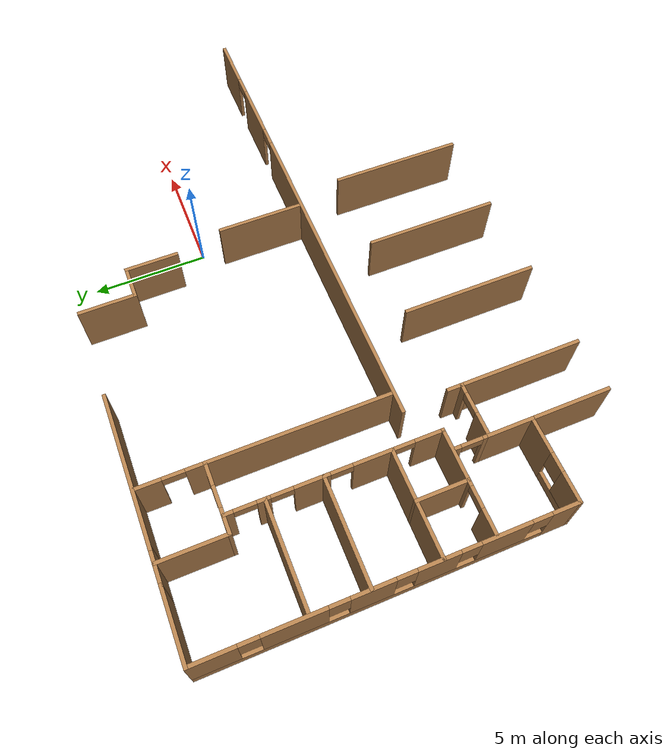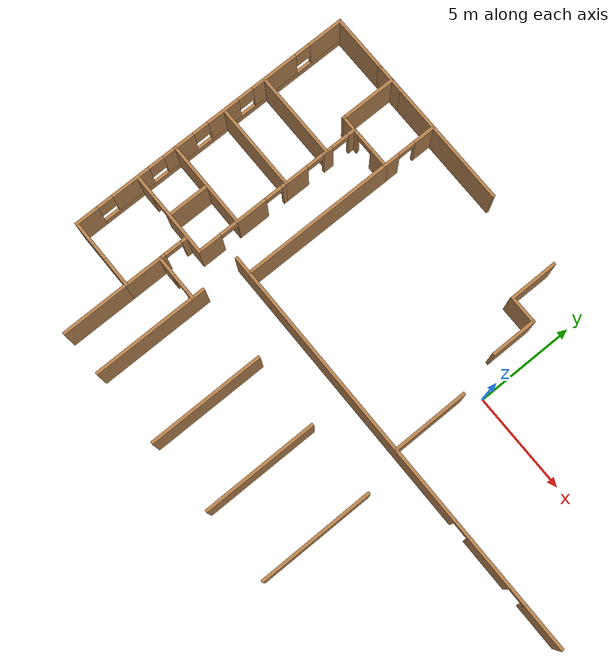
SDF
<sdf version="1.5">
 <model name="Office">
  <link name="Wall_10">
   <collision name="Wall_10_Collision">
    <geometry><box><size>3 0.15 2.5</size></box></geometry>
    <pose>0 0 1.25 0 -0 0</pose>
   </collision>
   <visual name="Wall_10_Visual">
    <pose>0 0 1.25 0 -0 0</pose>
    <geometry><box><size>3 0.15 2.5</size></box></geometry>
    <material>
     <script><uri>file://media/materials/scripts/gazebo.material</uri><name>Gazebo/Wood</name></script>
     <ambient>1 1 1 1</ambient>
    </material>
   </visual>
   <pose>-15.5998 5.80875 0 0 -0 0</pose>
  </link>
  <link name="Wall_14">
   <collision name="Wall_14_Collision">
    <geometry><box><size>1.5 0.15 2.5</size></box></geometry>
    <pose>0 0 1.25 0 -0 0</pose>
   </collision>
   <visual name="Wall_14_Visual">
    <pose>0 0 1.25 0 -0 0</pose>
    <geometry><box><size>1.5 0.15 2.5</size></box></geometry>
    <material>
     <script><uri>file://media/materials/scripts/gazebo.material</uri><name>Gazebo/Wood</name></script>
     <ambient>1 1 1 1</ambient>
    </material>
   </visual>
   <pose>-13.4998 5.80875 0 0 -0 0</pose>
  </link>
  <link name="Wall_15">
   <collision name="Wall_15_Collision">
    <geometry><box><size>6.5 0.15 2.5</size></box></geometry>
    <pose>0 0 1.25 0 -0 0</pose>
   </collision>
   <visual name="Wall_15_Visual">
    <pose>0 0 1.25 0 -0 0</pose>
    <geometry><box><size>6.5 0.15 2.5</size></box></geometry>
    <material>
     <script><uri>file://media/materials/scripts/gazebo.material</uri><name>Gazebo/Wood</name></script>
     <ambient>1 1 1 1</ambient>
    </material>
   </visual>
   <pose>-9.64979 5.80875 0 0 -0 0</pose>
  </link>
  <link name="Wall_28">
   <collision name="Wall_28_Collision">
    <geometry><box><size>2 0.15 2.5</size></box></geometry>
    <pose>0 0 1.25 0 -0 0</pose>
   </collision>
   <visual name="Wall_28_Visual">
    <pose>0 0 1.25 0 -0 0</pose>
    <geometry><box><size>2 0.15 2.5</size></box></geometry>
    <material>
     <script><uri>file://media/materials/scripts/gazebo.material</uri><name>Gazebo/Wood</name></script>
     <ambient>1 1 1 1</ambient>
    </material>
   </visual>
   <pose>-13.4952 -8.13375 0 0 -0 1.5708</pose>
  </link>
  <link name="Wall_29">
   <pose>-12.3617 -7.20875 0 0 -0 0</pose>
   <visual name="Wall_29_Visual_0">
    <pose>-0.669337 0 1.25 0 -0 0</pose>
    <geometry><box><size>1.07833 0.15 2.5</size></box></geometry>
    <material>
     <script><uri>file://media/materials/scripts/gazebo.material</uri><name>Gazebo/Wood</name></script>
     <ambient>1 1 1 1</ambient>
    </material>
   </visual>
   <collision name="Wall_29_Collision_0">
    <geometry><box><size>1.07833 0.15 2.5</size></box></geometry>
    <pose>-0.669337 0 1.25 0 -0 0</pose>
   </collision>
   <visual name="Wall_29_Visual_1">
    <pose>0.989163 0 1.25 0 -0 0</pose>
    <geometry><box><size>0.438674 0.15 2.5</size></box></geometry>
    <material>
     <script><uri>file://media/materials/scripts/gazebo.material</uri><name>Gazebo/Wood</name></script>
     <ambient>1 1 1 1</ambient>
    </material>
   </visual>
   <collision name="Wall_29_Collision_1">
    <geometry><box><size>0.438674 0.15 2.5</size></box></geometry>
    <pose>0.989163 0 1.25 0 -0 0</pose>
   </collision>
   <visual name="Wall_29_Visual_2">
    <pose>0.319826 0 2.25 0 -0 0</pose>
    <geometry><box><size>0.9 0.15 0.5</size></box></geometry>
    <material>
     <script><uri>file://media/materials/scripts/gazebo.material</uri><name>Gazebo/Wood</name></script>
     <ambient>1 1 1 1</ambient>
    </material>
   </visual>
   <collision name="Wall_29_Collision_2">
    <geometry><box><size>0.9 0.15 0.5</size></box></geometry>
    <pose>0.319826 0 2.25 0 -0 0</pose>
   </collision>
  </link>
  <link name="Wall_33">
   <collision name="Wall_33_Collision">
    <geometry><box><size>5.881 0.15 2.5</size></box></geometry>
    <pose>0 0 1.25 0 -0 0</pose>
   </collision>
   <visual name="Wall_33_Visual">
    <pose>0 0 1.25 0 -0 0</pose>
    <geometry><box><size>5.881 0.15 2.5</size></box></geometry>
    <material>
     <script><uri>file://media/materials/scripts/gazebo.material</uri><name>Gazebo/Wood</name></script>
     <ambient>1 1 1 1</ambient>
    </material>
   </visual>
   <pose>-11.2222 -9.50625 0 0 0 -1.5708</pose>
  </link>
  <link name="Wall_36">
   <collision name="Wall_36_Collision">
    <geometry><box><size>5.866 0.15 2.5</size></box></geometry>
    <pose>0 0 1.25 0 -0 0</pose>
   </collision>
   <visual name="Wall_36_Visual">
    <pose>0 0 1.25 0 -0 0</pose>
    <geometry><box><size>5.866 0.15 2.5</size></box></geometry>
    <material>
     <script><uri>file://media/materials/scripts/gazebo.material</uri><name>Gazebo/Wood</name></script>
     <ambient>1 1 1 1</ambient>
    </material>
   </visual>
   <pose>-7.38821 -9.51375 0 0 0 -1.5708</pose>
  </link>
  <link name="Wall_38">
   <collision name="Wall_38_Collision">
    <geometry><box><size>5.8 0.15 2.5</size></box></geometry>
    <pose>0 0 1.25 0 -0 0</pose>
   </collision>
   <visual name="Wall_38_Visual">
    <pose>0 0 1.25 0 -0 0</pose>
    <geometry><box><size>5.8 0.15 2.5</size></box></geometry>
    <material>
     <script><uri>file://media/materials/scripts/gazebo.material</uri><name>Gazebo/Wood</name></script>
     <ambient>1 1 1 1</ambient>
    </material>
   </visual>
   <pose>-3.68921 -9.54675 0 0 0 -1.5708</pose>
  </link>
  <link name="Wall_40">
   <collision name="Wall_40_Collision">
    <geometry><box><size>5.8 0.15 2.5</size></box></geometry>
    <pose>0 0 1.25 0 -0 0</pose>
   </collision>
   <visual name="Wall_40_Visual">
    <pose>0 0 1.25 0 -0 0</pose>
    <geometry><box><size>5.8 0.15 2.5</size></box></geometry>
    <material>
     <script><uri>file://media/materials/scripts/gazebo.material</uri><name>Gazebo/Wood</name></script>
     <ambient>1 1 1 1</ambient>
    </material>
   </visual>
   <pose>0.046792 -9.54675 0 0 0 -1.5708</pose>
  </link>
  <link name="Wall_51">
   <pose>-14.8308 -5.69671 0 0 -0 0</pose>
   <visual name="Wall_51_Visual_0">
    <pose>-1.66535 0 1.25 0 -0 0</pose>
    <geometry><box><size>1.16929 0.15 2.5</size></box></geometry>
    <material>
     <script><uri>file://media/materials/scripts/gazebo.material</uri><name>Gazebo/Wood</name></script>
     <ambient>1 1 1 1</ambient>
    </material>
   </visual>
   <collision name="Wall_51_Collision_0">
    <geometry><box><size>1.16929 0.15 2.5</size></box></geometry>
    <pose>-1.66535 0 1.25 0 -0 0</pose>
   </collision>
   <visual name="Wall_51_Visual_1">
    <pose>1.03465 0 1.25 0 -0 0</pose>
    <geometry><box><size>2.43071 0.15 2.5</size></box></geometry>
    <material>
     <script><uri>file://media/materials/scripts/gazebo.material</uri><name>Gazebo/Wood</name></script>
     <ambient>1 1 1 1</ambient>
    </material>
   </visual>
   <collision name="Wall_51_Collision_1">
    <geometry><box><size>2.43071 0.15 2.5</size></box></geometry>
    <pose>1.03465 0 1.25 0 -0 0</pose>
   </collision>
   <visual name="Wall_51_Visual_2">
    <pose>-0.63071 0 2.25 0 -0 0</pose>
    <geometry><box><size>0.9 0.15 0.5</size></box></geometry>
    <material>
     <script><uri>file://media/materials/scripts/gazebo.material</uri><name>Gazebo/Wood</name></script>
     <ambient>1 1 1 1</ambient>
    </material>
   </visual>
   <collision name="Wall_51_Collision_2">
    <geometry><box><size>0.9 0.15 0.5</size></box></geometry>
    <pose>-0.63071 0 2.25 0 -0 0</pose>
   </collision>
  </link>
  <link name="Wall_52">
   <pose>-12.6558 -3.27171 0 0 -0 1.5708</pose>
   <visual name="Wall_52_Visual_0">
    <pose>-1.8744 0 1.25 0 -0 0</pose>
    <geometry><box><size>1.25119 0.15 2.5</size></box></geometry>
    <material>
     <script><uri>file://media/materials/scripts/gazebo.material</uri><name>Gazebo/Wood</name></script>
     <ambient>1 1 1 1</ambient>
    </material>
   </visual>
   <collision name="Wall_52_Collision_0">
    <geometry><box><size>1.25119 0.15 2.5</size></box></geometry>
    <pose>-1.8744 0 1.25 0 -0 0</pose>
   </collision>
   <visual name="Wall_52_Visual_1">
    <pose>0.459327 0 1.25 0 -0 0</pose>
    <geometry><box><size>1.61627 0.15 2.5</size></box></geometry>
    <material>
     <script><uri>file://media/materials/scripts/gazebo.material</uri><name>Gazebo/Wood</name></script>
     <ambient>1 1 1 1</ambient>
    </material>
   </visual>
   <collision name="Wall_52_Collision_1">
    <geometry><box><size>1.61627 0.15 2.5</size></box></geometry>
    <pose>0.459327 0 1.25 0 -0 0</pose>
   </collision>
   <visual name="Wall_52_Visual_2">
    <pose>2.33373 0 1.25 0 -0 0</pose>
    <geometry><box><size>0.332538 0.15 2.5</size></box></geometry>
    <material>
     <script><uri>file://media/materials/scripts/gazebo.material</uri><name>Gazebo/Wood</name></script>
     <ambient>1 1 1 1</ambient>
    </material>
   </visual>
   <collision name="Wall_52_Collision_2">
    <geometry><box><size>0.332538 0.15 2.5</size></box></geometry>
    <pose>2.33373 0 1.25 0 -0 0</pose>
   </collision>
   <visual name="Wall_52_Visual_3">
    <pose>-0.798807 0 2.25 0 -0 0</pose>
    <geometry><box><size>0.9 0.15 0.5</size></box></geometry>
    <material>
     <script><uri>file://media/materials/scripts/gazebo.material</uri><name>Gazebo/Wood</name></script>
     <ambient>1 1 1 1</ambient>
    </material>
   </visual>
   <collision name="Wall_52_Collision_3">
    <geometry><box><size>0.9 0.15 0.5</size></box></geometry>
    <pose>-0.798807 0 2.25 0 -0 0</pose>
   </collision>
   <visual name="Wall_52_Visual_4">
    <pose>1.71746 0 2.25 0 -0 0</pose>
    <geometry><box><size>0.9 0.15 0.5</size></box></geometry>
    <material>
     <script><uri>file://media/materials/scripts/gazebo.material</uri><name>Gazebo/Wood</name></script>
     <ambient>1 1 1 1</ambient>
    </material>
   </visual>
   <collision name="Wall_52_Collision_4">
    <geometry><box><size>0.9 0.15 0.5</size></box></geometry>
    <pose>1.71746 0 2.25 0 -0 0</pose>
   </collision>
  </link>
  <link name="Wall_53">
   <collision name="Wall_53_Collision">
    <geometry><box><size>4.5 0.15 2.5</size></box></geometry>
    <pose>0 0 1.25 0 -0 0</pose>
   </collision>
   <visual name="Wall_53_Visual">
    <pose>0 0 1.25 0 -0 0</pose>
    <geometry><box><size>4.5 0.15 2.5</size></box></geometry>
    <material>
     <script><uri>file://media/materials/scripts/gazebo.material</uri><name>Gazebo/Wood</name></script>
     <ambient>1 1 1 1</ambient>
    </material>
   </visual>
   <pose>-14.8308 -0.846709 0 0 -0 3.14159</pose>
  </link>
  <link name="Wall_57">
   <collision name="Wall_57_Collision">
    <geometry><box><size>4.5 0.15 2.5</size></box></geometry>
    <pose>0 0 1.25 0 -0 0</pose>
   </collision>
   <visual name="Wall_57_Visual">
    <pose>0 0 1.25 0 -0 0</pose>
    <geometry><box><size>4.5 0.15 2.5</size></box></geometry>
    <material>
     <script><uri>file://media/materials/scripts/gazebo.material</uri><name>Gazebo/Wood</name></script>
     <ambient>1 1 1 1</ambient>
    </material>
   </visual>
   <pose>-14.8308 -3.59035 0 0 -0 0</pose>
  </link>
  <link name="Wall_59">
   <collision name="Wall_59_Collision">
    <geometry><box><size>2.25 0.15 2.5</size></box></geometry>
    <pose>0 0 1.25 0 -0 0</pose>
   </collision>
   <visual name="Wall_59_Visual">
    <pose>0 0 1.25 0 -0 0</pose>
    <geometry><box><size>2.25 0.15 2.5</size></box></geometry>
    <material>
     <script><uri>file://media/materials/scripts/gazebo.material</uri><name>Gazebo/Wood</name></script>
     <ambient>1 1 1 1</ambient>
    </material>
   </visual>
   <pose>-14.7695 -4.64035 0 0 0 -1.5708</pose>
  </link>
  <link name="Wall_61">
   <pose>-0.695039 -4.62762 0 0 -0 0</pose>
   <visual name="Wall_61_Visual_0">
    <pose>-3.39393 0 1.25 0 -0 0</pose>
    <geometry><box><size>14.7121 0.15 2.5</size></box></geometry>
    <material>
     <script><uri>file://media/materials/scripts/gazebo.material</uri><name>Gazebo/Wood</name></script>
     <ambient>1 1 1 1</ambient>
    </material>
   </visual>
   <collision name="Wall_61_Collision_0">
    <geometry><box><size>14.7121 0.15 2.5</size></box></geometry>
    <pose>-3.39393 0 1.25 0 -0 0</pose>
   </collision>
   <visual name="Wall_61_Visual_1">
    <pose>6.1834 0 1.25 0 -0 0</pose>
    <geometry><box><size>2.6425 0.15 2.5</size></box></geometry>
    <material>
     <script><uri>file://media/materials/scripts/gazebo.material</uri><name>Gazebo/Wood</name></script>
     <ambient>1 1 1 1</ambient>
    </material>
   </visual>
   <collision name="Wall_61_Collision_1">
    <geometry><box><size>2.6425 0.15 2.5</size></box></geometry>
    <pose>6.1834 0 1.25 0 -0 0</pose>
   </collision>
   <visual name="Wall_61_Visual_2">
    <pose>9.57732 0 1.25 0 -0 0</pose>
    <geometry><box><size>2.34536 0.15 2.5</size></box></geometry>
    <material>
     <script><uri>file://media/materials/scripts/gazebo.material</uri><name>Gazebo/Wood</name></script>
     <ambient>1 1 1 1</ambient>
    </material>
   </visual>
   <collision name="Wall_61_Collision_2">
    <geometry><box><size>2.34536 0.15 2.5</size></box></geometry>
    <pose>9.57732 0 1.25 0 -0 0</pose>
   </collision>
   <visual name="Wall_61_Visual_3">
    <pose>4.41215 0 2.25 0 -0 0</pose>
    <geometry><box><size>0.9 0.15 0.5</size></box></geometry>
    <material>
     <script><uri>file://media/materials/scripts/gazebo.material</uri><name>Gazebo/Wood</name></script>
     <ambient>1 1 1 1</ambient>
    </material>
   </visual>
   <collision name="Wall_61_Collision_3">
    <geometry><box><size>0.9 0.15 0.5</size></box></geometry>
    <pose>4.41215 0 2.25 0 -0 0</pose>
   </collision>
   <visual name="Wall_61_Visual_4">
    <pose>7.95465 0 2.25 0 -0 0</pose>
    <geometry><box><size>0.9 0.15 0.5</size></box></geometry>
    <material>
     <script><uri>file://media/materials/scripts/gazebo.material</uri><name>Gazebo/Wood</name></script>
     <ambient>1 1 1 1</ambient>
    </material>
   </visual>
   <collision name="Wall_61_Collision_4">
    <geometry><box><size>0.9 0.15 0.5</size></box></geometry>
    <pose>7.95465 0 2.25 0 -0 0</pose>
   </collision>
  </link>
  <link name="Wall_65">
   <collision name="Wall_65_Collision">
    <geometry><box><size>3.83063 0.15 2.5</size></box></geometry>
    <pose>0 0 1.25 0 -0 0</pose>
   </collision>
   <visual name="Wall_65_Visual">
    <pose>0 0 1.25 0 -0 0</pose>
    <geometry><box><size>3.83063 0.15 2.5</size></box></geometry>
    <material>
     <script><uri>file://media/materials/scripts/gazebo.material</uri><name>Gazebo/Wood</name></script>
     <ambient>1 1 1 1</ambient>
    </material>
   </visual>
   <pose>-0.622208 -2.73225 0 0 0 -1.5708</pose>
  </link>
  <link name="Wall_7">
   <collision name="Wall_7_Collision">
    <geometry><box><size>3.5 0.15 2.5</size></box></geometry>
    <pose>0 0 1.25 0 -0 0</pose>
   </collision>
   <visual name="Wall_7_Visual">
    <pose>0 0 1.25 0 -0 0</pose>
    <geometry><box><size>3.5 0.15 2.5</size></box></geometry>
    <material>
     <script><uri>file://media/materials/scripts/gazebo.material</uri><name>Gazebo/Wood</name></script>
     <ambient>1 1 1 1</ambient>
    </material>
   </visual>
   <pose>-13.4952 -10.7338 0 0 -0 1.5708</pose>
  </link>
  <link name="Wall_71">
   <pose>-12.6558 1.07829 0 0 -0 1.5708</pose>
   <visual name="Wall_71_Visual_0">
    <pose>-1.36814 0 1.25 0 -0 0</pose>
    <geometry><box><size>1.26371 0.15 2.5</size></box></geometry>
    <material>
     <script><uri>file://media/materials/scripts/gazebo.material</uri><name>Gazebo/Wood</name></script>
     <ambient>1 1 1 1</ambient>
    </material>
   </visual>
   <collision name="Wall_71_Collision_0">
    <geometry><box><size>1.26371 0.15 2.5</size></box></geometry>
    <pose>-1.36814 0 1.25 0 -0 0</pose>
   </collision>
   <visual name="Wall_71_Visual_1">
    <pose>0.427789 0 1.25 0 -0 0</pose>
    <geometry><box><size>0.528153 0.15 2.5</size></box></geometry>
    <material>
     <script><uri>file://media/materials/scripts/gazebo.material</uri><name>Gazebo/Wood</name></script>
     <ambient>1 1 1 1</ambient>
    </material>
   </visual>
   <collision name="Wall_71_Collision_1">
    <geometry><box><size>0.528153 0.15 2.5</size></box></geometry>
    <pose>0.427789 0 1.25 0 -0 0</pose>
   </collision>
   <visual name="Wall_71_Visual_2">
    <pose>1.79593 0 1.25 0 -0 0</pose>
    <geometry><box><size>0.408135 0.15 2.5</size></box></geometry>
    <material>
     <script><uri>file://media/materials/scripts/gazebo.material</uri><name>Gazebo/Wood</name></script>
     <ambient>1 1 1 1</ambient>
    </material>
   </visual>
   <collision name="Wall_71_Collision_2">
    <geometry><box><size>0.408135 0.15 2.5</size></box></geometry>
    <pose>1.79593 0 1.25 0 -0 0</pose>
   </collision>
   <visual name="Wall_71_Visual_3">
    <pose>-0.286287 0 2.25 0 -0 0</pose>
    <geometry><box><size>0.9 0.15 0.5</size></box></geometry>
    <material>
     <script><uri>file://media/materials/scripts/gazebo.material</uri><name>Gazebo/Wood</name></script>
     <ambient>1 1 1 1</ambient>
    </material>
   </visual>
   <collision name="Wall_71_Collision_3">
    <geometry><box><size>0.9 0.15 0.5</size></box></geometry>
    <pose>-0.286287 0 2.25 0 -0 0</pose>
   </collision>
   <visual name="Wall_71_Visual_4">
    <pose>1.14186 0 2.25 0 -0 0</pose>
    <geometry><box><size>0.9 0.15 0.5</size></box></geometry>
    <material>
     <script><uri>file://media/materials/scripts/gazebo.material</uri><name>Gazebo/Wood</name></script>
     <ambient>1 1 1 1</ambient>
    </material>
   </visual>
   <collision name="Wall_71_Collision_4">
    <geometry><box><size>0.9 0.15 0.5</size></box></geometry>
    <pose>1.14186 0 2.25 0 -0 0</pose>
   </collision>
  </link>
  <link name="Wall_74">
   <collision name="Wall_74_Collision">
    <geometry><box><size>4.394 0.15 2.5</size></box></geometry>
    <pose>0 0 1.25 0 -0 0</pose>
   </collision>
   <visual name="Wall_74_Visual">
    <pose>0 0 1.25 0 -0 0</pose>
    <geometry><box><size>4.394 0.15 2.5</size></box></geometry>
    <material>
     <script><uri>file://media/materials/scripts/gazebo.material</uri><name>Gazebo/Wood</name></script>
     <ambient>1 1 1 1</ambient>
    </material>
   </visual>
   <pose>-14.8162 1.44825 0 0 -0 0</pose>
  </link>
  <link name="Wall_76">
   <pose>-11.9562 3.03925 0 0 -0 0</pose>
   <visual name="Wall_76_Visual_0">
    <pose>-0.950696 0 1.25 0 -0 0</pose>
    <geometry><box><size>1.09861 0.15 2.5</size></box></geometry>
    <material>
     <script><uri>file://media/materials/scripts/gazebo.material</uri><name>Gazebo/Wood</name></script>
     <ambient>1 1 1 1</ambient>
    </material>
   </visual>
   <collision name="Wall_76_Collision_0">
    <geometry><box><size>1.09861 0.15 2.5</size></box></geometry>
    <pose>-0.950696 0 1.25 0 -0 0</pose>
   </collision>
   <visual name="Wall_76_Visual_1">
    <pose>0.999304 0 1.25 0 -0 0</pose>
    <geometry><box><size>1.00139 0.15 2.5</size></box></geometry>
    <material>
     <script><uri>file://media/materials/scripts/gazebo.material</uri><name>Gazebo/Wood</name></script>
     <ambient>1 1 1 1</ambient>
    </material>
   </visual>
   <collision name="Wall_76_Collision_1">
    <geometry><box><size>1.00139 0.15 2.5</size></box></geometry>
    <pose>0.999304 0 1.25 0 -0 0</pose>
   </collision>
   <visual name="Wall_76_Visual_2">
    <pose>0.048609 0 2.25 0 -0 0</pose>
    <geometry><box><size>0.9 0.15 0.5</size></box></geometry>
    <material>
     <script><uri>file://media/materials/scripts/gazebo.material</uri><name>Gazebo/Wood</name></script>
     <ambient>1 1 1 1</ambient>
    </material>
   </visual>
   <collision name="Wall_76_Collision_2">
    <geometry><box><size>0.9 0.15 0.5</size></box></geometry>
    <pose>0.048609 0 2.25 0 -0 0</pose>
   </collision>
  </link>
  <link name="Wall_77">
   <pose>-10.5312 4.38375 0 0 -0 1.5708</pose>
   <visual name="Wall_77_Visual_0">
    <pose>-0.992696 0 1.25 0 -0 0</pose>
    <geometry><box><size>0.853609 0.15 2.5</size></box></geometry>
    <material>
     <script><uri>file://media/materials/scripts/gazebo.material</uri><name>Gazebo/Wood</name></script>
     <ambient>1 1 1 1</ambient>
    </material>
   </visual>
   <collision name="Wall_77_Collision_0">
    <geometry><box><size>0.853609 0.15 2.5</size></box></geometry>
    <pose>-0.992696 0 1.25 0 -0 0</pose>
   </collision>
   <visual name="Wall_77_Visual_1">
    <pose>0.876804 0 1.25 0 -0 0</pose>
    <geometry><box><size>1.08539 0.15 2.5</size></box></geometry>
    <material>
     <script><uri>file://media/materials/scripts/gazebo.material</uri><name>Gazebo/Wood</name></script>
     <ambient>1 1 1 1</ambient>
    </material>
   </visual>
   <collision name="Wall_77_Collision_1">
    <geometry><box><size>1.08539 0.15 2.5</size></box></geometry>
    <pose>0.876804 0 1.25 0 -0 0</pose>
   </collision>
   <visual name="Wall_77_Visual_2">
    <pose>-0.115891 0 2.25 0 -0 0</pose>
    <geometry><box><size>0.9 0.15 0.5</size></box></geometry>
    <material>
     <script><uri>file://media/materials/scripts/gazebo.material</uri><name>Gazebo/Wood</name></script>
     <ambient>1 1 1 1</ambient>
    </material>
   </visual>
   <collision name="Wall_77_Collision_2">
    <geometry><box><size>0.9 0.15 0.5</size></box></geometry>
    <pose>-0.115891 0 2.25 0 -0 0</pose>
   </collision>
  </link>
  <link name="Wall_79">
   <collision name="Wall_79_Collision">
    <geometry><box><size>2.889 0.15 2.5</size></box></geometry>
    <pose>0 0 1.25 0 -0 0</pose>
   </collision>
   <visual name="Wall_79_Visual">
    <pose>0 0 1.25 0 -0 0</pose>
    <geometry><box><size>2.889 0.15 2.5</size></box></geometry>
    <material>
     <script><uri>file://media/materials/scripts/gazebo.material</uri><name>Gazebo/Wood</name></script>
     <ambient>1 1 1 1</ambient>
    </material>
   </visual>
   <pose>-13.3812 4.40875 0 0 -0 1.5708</pose>
  </link>
  <link name="Wall_8">
   <pose>-15.2602 -9.05875 0 0 -0 3.14159</pose>
   <visual name="Wall_8_Visual_0">
    <pose>-1.05495 0 1.25 0 -0 0</pose>
    <geometry><box><size>1.5701 0.15 2.5</size></box></geometry>
    <material>
     <script><uri>file://media/materials/scripts/gazebo.material</uri><name>Gazebo/Wood</name></script>
     <ambient>1 1 1 1</ambient>
    </material>
   </visual>
   <collision name="Wall_8_Collision_0">
    <geometry><box><size>1.5701 0.15 2.5</size></box></geometry>
    <pose>-1.05495 0 1.25 0 -0 0</pose>
   </collision>
   <visual name="Wall_8_Visual_1">
    <pose>0.785051 0 0.25 0 -0 0</pose>
    <geometry><box><size>2.1099 0.15 0.5</size></box></geometry>
    <material>
     <script><uri>file://media/materials/scripts/gazebo.material</uri><name>Gazebo/Wood</name></script>
     <ambient>1 1 1 1</ambient>
    </material>
   </visual>
   <collision name="Wall_8_Collision_1">
    <geometry><box><size>2.1099 0.15 0.5</size></box></geometry>
    <pose>0.785051 0 0.25 0 -0 0</pose>
   </collision>
   <visual name="Wall_8_Visual_2">
    <pose>1.18505 0 1.5 0 -0 0</pose>
    <geometry><box><size>1.3099 0.15 2</size></box></geometry>
    <material>
     <script><uri>file://media/materials/scripts/gazebo.material</uri><name>Gazebo/Wood</name></script>
     <ambient>1 1 1 1</ambient>
    </material>
   </visual>
   <collision name="Wall_8_Collision_2">
    <geometry><box><size>1.3099 0.15 2</size></box></geometry>
    <pose>1.18505 0 1.5 0 -0 0</pose>
   </collision>
   <visual name="Wall_8_Visual_3">
    <pose>0.130102 0 1.9 0 -0 0</pose>
    <geometry><box><size>0.8 0.15 1.2</size></box></geometry>
    <material>
     <script><uri>file://media/materials/scripts/gazebo.material</uri><name>Gazebo/Wood</name></script>
     <ambient>1 1 1 1</ambient>
    </material>
   </visual>
   <collision name="Wall_8_Collision_3">
    <geometry><box><size>0.8 0.15 1.2</size></box></geometry>
    <pose>0.130102 0 1.9 0 -0 0</pose>
   </collision>
  </link>
  <link name="Wall_81">
   <collision name="Wall_81_Collision">
    <geometry><box><size>7.75 0.15 2.5</size></box></geometry>
    <pose>0 0 1.25 0 -0 0</pose>
   </collision>
   <visual name="Wall_81_Visual">
    <pose>0 0 1.25 0 -0 0</pose>
    <geometry><box><size>7.75 0.15 2.5</size></box></geometry>
    <material>
     <script><uri>file://media/materials/scripts/gazebo.material</uri><name>Gazebo/Wood</name></script>
     <ambient>1 1 1 1</ambient>
    </material>
   </visual>
   <pose>-10.5312 -0.760751 0 0 0 -1.5708</pose>
  </link>
  <link name="Wall_83">
   <pose>-13.4952 -6.46525 0 0 -0 1.5708</pose>
   <visual name="Wall_83_Visual_0">
    <pose>-0.647821 0 1.25 0 -0 0</pose>
    <geometry><box><size>0.341358 0.15 2.5</size></box></geometry>
    <material>
     <script><uri>file://media/materials/scripts/gazebo.material</uri><name>Gazebo/Wood</name></script>
     <ambient>1 1 1 1</ambient>
    </material>
   </visual>
   <collision name="Wall_83_Collision_0">
    <geometry><box><size>0.341358 0.15 2.5</size></box></geometry>
    <pose>-0.647821 0 1.25 0 -0 0</pose>
   </collision>
   <visual name="Wall_83_Visual_1">
    <pose>0.620679 0 1.25 0 -0 0</pose>
    <geometry><box><size>0.395642 0.15 2.5</size></box></geometry>
    <material>
     <script><uri>file://media/materials/scripts/gazebo.material</uri><name>Gazebo/Wood</name></script>
     <ambient>1 1 1 1</ambient>
    </material>
   </visual>
   <collision name="Wall_83_Collision_1">
    <geometry><box><size>0.395642 0.15 2.5</size></box></geometry>
    <pose>0.620679 0 1.25 0 -0 0</pose>
   </collision>
   <visual name="Wall_83_Visual_2">
    <pose>-0.027142 0 2.25 0 -0 0</pose>
    <geometry><box><size>0.9 0.15 0.5</size></box></geometry>
    <material>
     <script><uri>file://media/materials/scripts/gazebo.material</uri><name>Gazebo/Wood</name></script>
     <ambient>1 1 1 1</ambient>
    </material>
   </visual>
   <collision name="Wall_83_Collision_2">
    <geometry><box><size>0.9 0.15 0.5</size></box></geometry>
    <pose>-0.027142 0 2.25 0 -0 0</pose>
   </collision>
  </link>
  <link name="Wall_9">
   <pose>-17.025 -1.625 0 0 -0 1.57077</pose>
   <visual name="Wall_9_Visual_0">
    <pose>-6.90288 0 1.25 0 -0 0</pose>
    <geometry><box><size>1.21175 0.15 2.5</size></box></geometry>
    <material>
     <script><uri>file://media/materials/scripts/gazebo.material</uri><name>Gazebo/Wood</name></script>
     <ambient>1 1 1 1</ambient>
    </material>
   </visual>
   <collision name="Wall_9_Collision_0">
    <geometry><box><size>1.21175 0.15 2.5</size></box></geometry>
    <pose>-6.90288 0 1.25 0 -0 0</pose>
   </collision>
   <visual name="Wall_9_Visual_1">
    <pose>0.605874 0 0.25 0 -0 0</pose>
    <geometry><box><size>13.8058 0.15 0.5</size></box></geometry>
    <material>
     <script><uri>file://media/materials/scripts/gazebo.material</uri><name>Gazebo/Wood</name></script>
     <ambient>1 1 1 1</ambient>
    </material>
   </visual>
   <collision name="Wall_9_Collision_1">
    <geometry><box><size>13.8058 0.15 0.5</size></box></geometry>
    <pose>0.605874 0 0.25 0 -0 0</pose>
   </collision>
   <visual name="Wall_9_Visual_2">
    <pose>-4.47784 0 1.5 0 -0 0</pose>
    <geometry><box><size>2.03833 0.15 2</size></box></geometry>
    <material>
     <script><uri>file://media/materials/scripts/gazebo.material</uri><name>Gazebo/Wood</name></script>
     <ambient>1 1 1 1</ambient>
    </material>
   </visual>
   <collision name="Wall_9_Collision_2">
    <geometry><box><size>2.03833 0.15 2</size></box></geometry>
    <pose>-4.47784 0 1.5 0 -0 0</pose>
   </collision>
   <visual name="Wall_9_Visual_3">
    <pose>-1.81049 0 1.5 0 -0 0</pose>
    <geometry><box><size>1.69636 0.15 2</size></box></geometry>
    <material>
     <script><uri>file://media/materials/scripts/gazebo.material</uri><name>Gazebo/Wood</name></script>
     <ambient>1 1 1 1</ambient>
    </material>
   </visual>
   <collision name="Wall_9_Collision_3">
    <geometry><box><size>1.69636 0.15 2</size></box></geometry>
    <pose>-1.81049 0 1.5 0 -0 0</pose>
   </collision>
   <visual name="Wall_9_Visual_4">
    <pose>0.702973 0 1.5 0 -0 0</pose>
    <geometry><box><size>1.73056 0.15 2</size></box></geometry>
    <material>
     <script><uri>file://media/materials/scripts/gazebo.material</uri><name>Gazebo/Wood</name></script>
     <ambient>1 1 1 1</ambient>
    </material>
   </visual>
   <collision name="Wall_9_Collision_4">
    <geometry><box><size>1.73056 0.15 2</size></box></geometry>
    <pose>0.702973 0 1.5 0 -0 0</pose>
   </collision>
   <visual name="Wall_9_Visual_5">
    <pose>3.60969 0 1.5 0 -0 0</pose>
    <geometry><box><size>2.48288 0.15 2</size></box></geometry>
    <material>
     <script><uri>file://media/materials/scripts/gazebo.material</uri><name>Gazebo/Wood</name></script>
     <ambient>1 1 1 1</ambient>
    </material>
   </visual>
   <collision name="Wall_9_Collision_5">
    <geometry><box><size>2.48288 0.15 2</size></box></geometry>
    <pose>3.60969 0 1.5 0 -0 0</pose>
   </collision>
   <visual name="Wall_9_Visual_6">
    <pose>6.57994 0 1.5 0 -0 0</pose>
    <geometry><box><size>1.85762 0.15 2</size></box></geometry>
    <material>
     <script><uri>file://media/materials/scripts/gazebo.material</uri><name>Gazebo/Wood</name></script>
     <ambient>1 1 1 1</ambient>
    </material>
   </visual>
   <collision name="Wall_9_Collision_6">
    <geometry><box><size>1.85762 0.15 2</size></box></geometry>
    <pose>6.57994 0 1.5 0 -0 0</pose>
   </collision>
   <visual name="Wall_9_Visual_7">
    <pose>-5.897 0 1.9 0 -0 0</pose>
    <geometry><box><size>0.8 0.15 1.2</size></box></geometry>
    <material>
     <script><uri>file://media/materials/scripts/gazebo.material</uri><name>Gazebo/Wood</name></script>
     <ambient>1 1 1 1</ambient>
    </material>
   </visual>
   <collision name="Wall_9_Collision_7">
    <geometry><box><size>0.8 0.15 1.2</size></box></geometry>
    <pose>-5.897 0 1.9 0 -0 0</pose>
   </collision>
   <visual name="Wall_9_Visual_8">
    <pose>-3.05867 0 1.9 0 -0 0</pose>
    <geometry><box><size>0.8 0.15 1.2</size></box></geometry>
    <material>
     <script><uri>file://media/materials/scripts/gazebo.material</uri><name>Gazebo/Wood</name></script>
     <ambient>1 1 1 1</ambient>
    </material>
   </visual>
   <collision name="Wall_9_Collision_8">
    <geometry><box><size>0.8 0.15 1.2</size></box></geometry>
    <pose>-3.05867 0 1.9 0 -0 0</pose>
   </collision>
   <visual name="Wall_9_Visual_9">
    <pose>-0.562306 0 1.9 0 -0 0</pose>
    <geometry><box><size>0.8 0.15 1.2</size></box></geometry>
    <material>
     <script><uri>file://media/materials/scripts/gazebo.material</uri><name>Gazebo/Wood</name></script>
     <ambient>1 1 1 1</ambient>
    </material>
   </visual>
   <collision name="Wall_9_Collision_9">
    <geometry><box><size>0.8 0.15 1.2</size></box></geometry>
    <pose>-0.562306 0 1.9 0 -0 0</pose>
   </collision>
   <visual name="Wall_9_Visual_10">
    <pose>1.96825 0 1.9 0 -0 0</pose>
    <geometry><box><size>0.8 0.15 1.2</size></box></geometry>
    <material>
     <script><uri>file://media/materials/scripts/gazebo.material</uri><name>Gazebo/Wood</name></script>
     <ambient>1 1 1 1</ambient>
    </material>
   </visual>
   <collision name="Wall_9_Collision_10">
    <geometry><box><size>0.8 0.15 1.2</size></box></geometry>
    <pose>1.96825 0 1.9 0 -0 0</pose>
   </collision>
   <visual name="Wall_9_Visual_11">
    <pose>5.25113 0 1.9 0 -0 0</pose>
    <geometry><box><size>0.8 0.15 1.2</size></box></geometry>
    <material>
     <script><uri>file://media/materials/scripts/gazebo.material</uri><name>Gazebo/Wood</name></script>
     <ambient>1 1 1 1</ambient>
    </material>
   </visual>
   <collision name="Wall_9_Collision_11">
    <geometry><box><size>0.8 0.15 1.2</size></box></geometry>
    <pose>5.25113 0 1.9 0 -0 0</pose>
   </collision>
  </link>
  <link name="Wall_96">
   <collision name="Wall_96_Collision">
    <geometry><box><size>2.5 0.15 2.5</size></box></geometry>
    <pose>0 0 1.25 0 -0 0</pose>
   </collision>
   <visual name="Wall_96_Visual">
    <pose>0 0 1.25 0 -0 0</pose>
    <geometry><box><size>2.5 0.15 2.5</size></box></geometry>
    <material>
     <script><uri>file://media/materials/scripts/gazebo.material</uri><name>Gazebo/Wood</name></script>
     <ambient>1 1 1 1</ambient>
    </material>
   </visual>
   <pose>-2.45727 4.64338 0 0 0 -1.5708</pose>
  </link>
  <link name="Wall_97">
   <collision name="Wall_97_Collision">
    <geometry><box><size>1.5 0.15 2.5</size></box></geometry>
    <pose>0 0 1.25 0 -0 0</pose>
   </collision>
   <visual name="Wall_97_Visual">
    <pose>0 0 1.25 0 -0 0</pose>
    <geometry><box><size>1.5 0.15 2.5</size></box></geometry>
    <material>
     <script><uri>file://media/materials/scripts/gazebo.material</uri><name>Gazebo/Wood</name></script>
     <ambient>1 1 1 1</ambient>
    </material>
   </visual>
   <pose>-1.78224 3.46831 0 0 0 -9.6e-05</pose>
  </link>
  <link name="Wall_98">
   <collision name="Wall_98_Collision">
    <geometry><box><size>2.34 0.15 2.5</size></box></geometry>
    <pose>0 0 1.25 0 -0 0</pose>
   </collision>
   <visual name="Wall_98_Visual">
    <pose>0 0 1.25 0 -0 0</pose>
    <geometry><box><size>2.34 0.15 2.5</size></box></geometry>
    <material>
     <script><uri>file://media/materials/scripts/gazebo.material</uri><name>Gazebo/Wood</name></script>
     <ambient>1 1 1 1</ambient>
    </material>
   </visual>
   <pose>-1.10721 2.37325 0 0 0 -1.5708</pose>
  </link>
  <static>1</static>
 </model>
</sdf>
